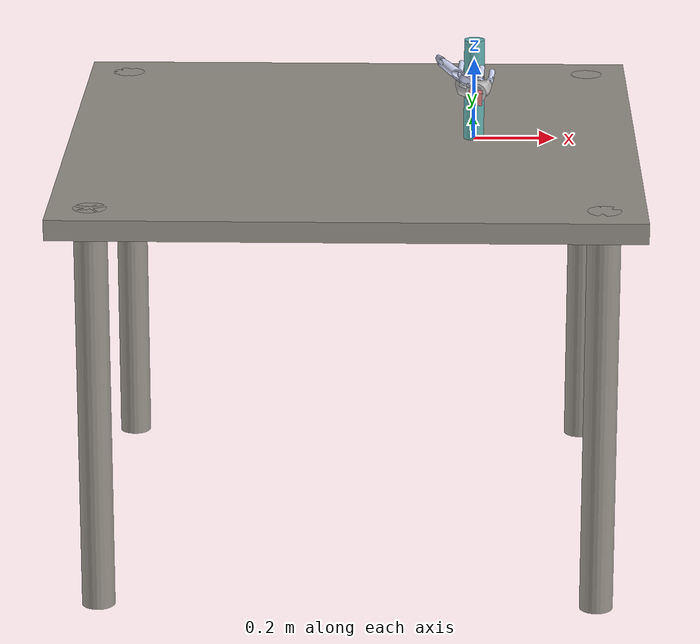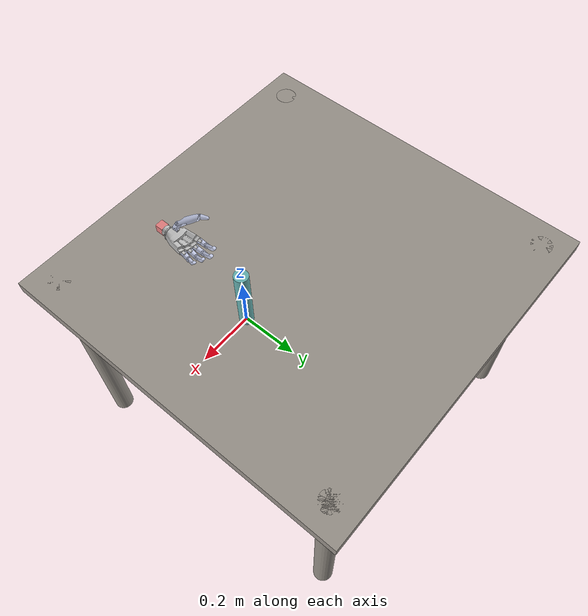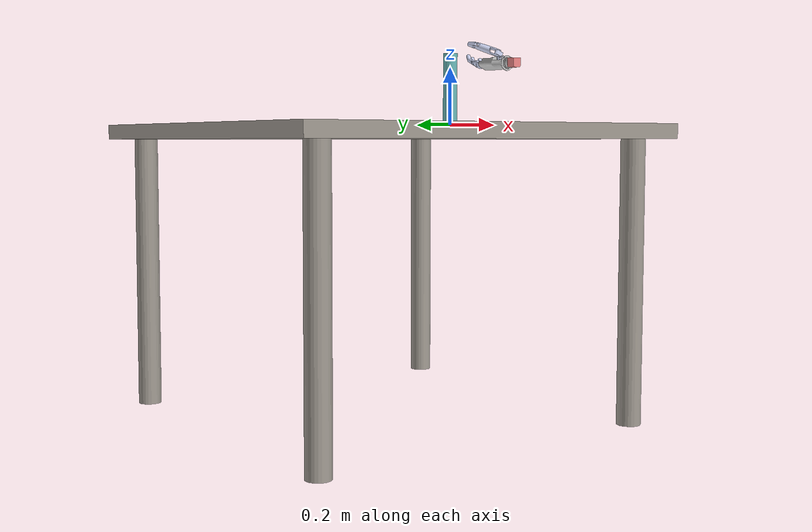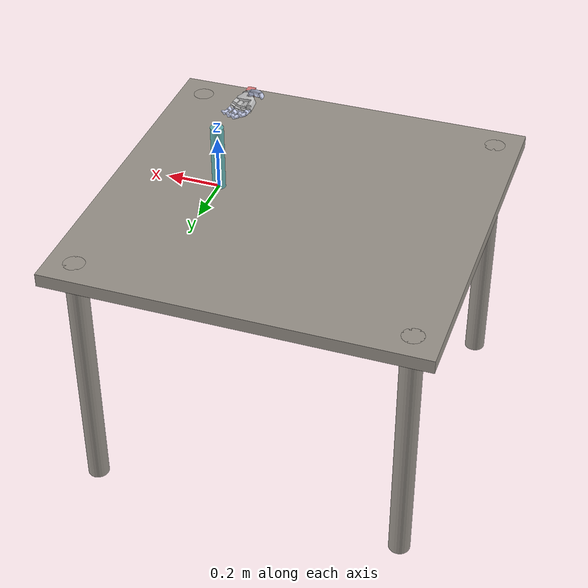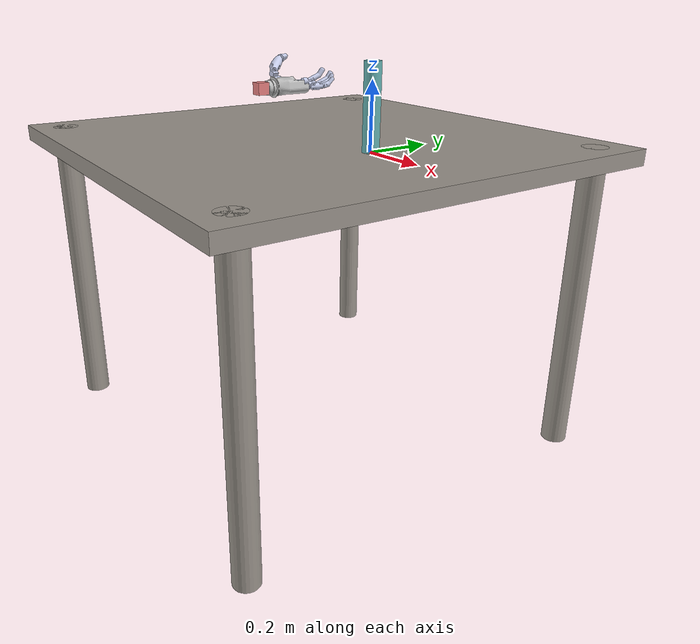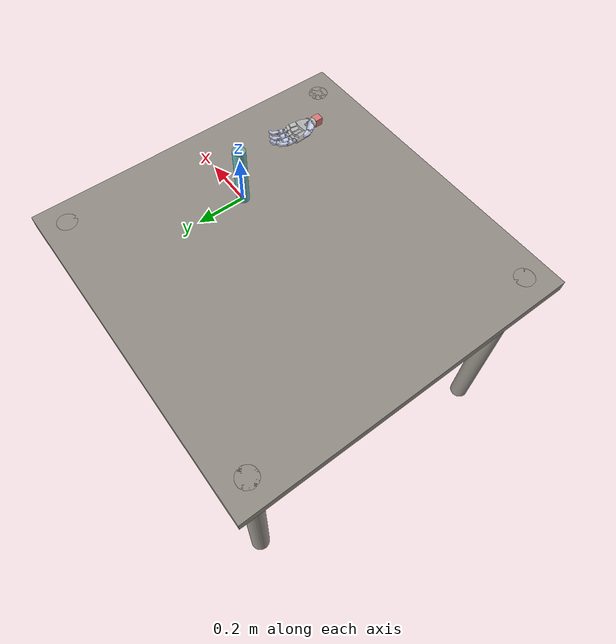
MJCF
<mujoco model="bb_left_hand">
    <include file="common/materials.xml"/>

    <compiler angle="radian" meshdir="mesh/bb_left_hand/" texturedir="texture/"/>
    <!-- "option" tag is taken from MPL.xml hand -->
    <option timestep="0.002" iterations="50" apirate="50" solver="Newton" tolerance="1e-10" cone="elliptic" gravity="0 0 -9.81" />

    <!-- MPL ALTERNATIVE -->
    <size njmax="500" nconmax="100" />

    <default>
        <default class="Generic">
            <geom contype="1" conaffinity="1" condim="4" margin="0.001" material="self" /> <!-- material="MatMesh" -->
        	<joint limited="true" damping="0.2" armature=".01"/>
        	<site type="ellipsoid" group="3"/> <!-- material="MatTouch" -->
            <position ctrllimited="true" kp="10"/>
            <velocity ctrllimited="true" ctrlrange="-1 1" forcelimited="true" forcerange="-1 1" kv="50"/>
		</default>
    </default>

    <statistic extent="1" center="0 -0.2 0.2"/>
    <visual>
        <quality shadowsize="2048"/>
    	<map fogstart="6" fogend="10"/>
    	<headlight diffuse=".6 .6 .6" specular="0 0 0"/>
    </visual>

    <asset>
        <mesh name="base_link" file="base_link.STL" />
        <mesh name="PPL" file="PPL.STL" />
        <mesh name="PDL" file="PDL.STL" />
        <mesh name="RPL" file="RPL.STL" />
        <mesh name="RDL" file="RDL.STL" />
        <mesh name="MPL" file="MPL.STL" />
        <mesh name="MDL" file="MDL.STL" />
        <mesh name="IPL" file="IPL.STL" />
        <mesh name="IDL" file="IDL.STL" />
        <mesh name="TCL" file="TCL.STL" />
        <mesh name="TPL" file="TPL.STL" />
        <mesh name="TDL" file="TDL.STL" />

        <!-- wood2d takes more GPU memory than marble2d -->
        <texture name="marble2d" type="2d" file="marble.png"/>
        <material name="table2d" texture="marble2d" reflectance="0.3" rgba=".8 .8 .8 1"/>

        <texture name="groundplane" type="2d" builtin="checker" rgb1=".2 .3 .4" rgb2=".1 .2 .3" width="100" height="100"/>
        <material name="groundplane" texture="groundplane" texrepeat="10 10"/>

        <material name="blue_color" rgba="0.0 1.0 0.0 1."/>

        <texture file="woodb.png" type="2d" />
        <material name="MatWoodB" texture="woodb" shininess="0" rgba="0.0 1.0 0.0 1.0" />

        <!-- shininess=".3" reflectance="0.3"  -->

    </asset>

    <worldbody>
        <light directional="false" cutoff="35" exponent="10" diffuse=".7 .7 .7" pos="0.4 -0.2 1.5" dir="-0.4 0.2 -1.5" specular=".3 .3 .3" castshadow="true" />
        <camera name="fixed" pos="-0.3 -.7 0.7" zaxis="0 -1 1.3" fovy="60" ipd="0.068"/>

        <!-- table -->
        <!-- Initial: 1x1     with +-0.4 bases -->
        <!-- Final  : 1.4x1.4 with +-0.6 bases -->
        <geom type="plane" pos="-0.3 0 0" size=".7 .7 .025" material="table2d"/> <!-- material= table2d | MatWoodB | green_table -->
        <geom contype="0" conaffinity="0" type="box" pos="-0.3 0 -0.026" size=".7 .7 .025" material="table2d" /> <!-- material="table2d blue_color tablecube" -->
        <geom contype="0" conaffinity="0" type="cylinder" fromto=" .3  .6 -1.001  .3  .6 -0.001" size="0.04" material="table2d" /> <!-- table2d -->
        <geom contype="0" conaffinity="0" type="cylinder" fromto="-.9  .6 -1.001 -.9  .6 -0.001" size="0.04" material="table2d" /> <!-- table2d -->
        <geom contype="0" conaffinity="0" type="cylinder" fromto=" .3 -.6 -1.001  .3 -.6 -0.001" size="0.04" material="table2d" /> <!-- table2d -->
        <geom contype="0" conaffinity="0" type="cylinder" fromto="-.9 -.6 -1.001 -.9 -.6 -0.001" size="0.04" material="table2d" /> <!-- table2d -->
        <!-- /table -->

        <!-- ground -->
        <geom contype="0" conaffinity="0" type="plane" pos="0 0 -1" size="10 10 0.25" material="groundplane"/> <!-- material="groundplane | blue_color | groundplane" -->
        <!-- /ground -->

        <!-- Natural colors -->

        <!-- object -->

        <body name="long_cylinder" pos="0. 0. 0.125" quat="1 0 0 0">
            <joint type="free" damping="0" armature="0" limited="false"/>

            <geom type="cylinder" pos="0 0 0" size="0.025 0.125" material="target" />

        </body>
        <!-- /object -->

        <body name="mocap" mocap="true" pos="0 -0.35 0.2" quat="1 0 0 0">
            <geom type="box" group="1" size="0.015 0.015 0.015" contype="0" conaffinity="0" rgba=".9 .5 .5 1"/>
        </body>

        <!-- ROBOT -->
        <!-- quat="2.36 0 3.1415 0" -->
        <!-- quat="3.1415 0 3.1415 0" -->
        <body childclass="Generic" name="base_link" pos="0 -0.335 0.2" quat="1 0 0 0" >
            <joint name="base_link_joint" type="free" damping="0" armature="0" limited="false"/>

            <site name="palm_center" pos="0 0.09 0.03"/>

            <inertial pos="-0.00393916 0.0601545 -0.000633525" mass="0.218885" diaginertia="1e-05 1e-05 1e-05" />
            <geom type="mesh" rgba="0.752941 0.752941 0.752941 1" mesh="base_link" />
            <body name="PPL" pos="0.0291239 0.109021 -0.00240167" quat="0.583861 0.517036 0.414965 0.468598">
                <inertial pos="0.0185447 0.00122979 -6.11859e-08" mass="0.00428965" diaginertia="1e-06 1e-06 1e-06" />
                <joint name="PPJ" type="hinge" pos="0 0 0" axis="0 0 1" range="0 1.57" />
                <geom type="mesh" rgba="0.792157 0.819608 0.933333 1" mesh="PPL" />
                <body name="PDL" pos="0.035659 0.00216546 0">
                    <inertial pos="0.0132061 0.00518222 -1.07692e-07" mass="0.0052304" diaginertia="1e-06 1e-06 1e-06" />
                    <joint name="PDJ" type="hinge" pos="0 0 0" axis="0 0 1" range="0 1.57"/>
                    <geom type="mesh" rgba="0.792157 0.819608 0.933333 1" mesh="PDL" />
                </body>
            </body>
            <body name="RPL" pos="0.00741287 0.116336 -0.00572859" quat="0.53625 0.526971 0.462142 0.470279">
                <inertial pos="0.0210198 0.00180111 1.57902e-07" mass="0.00578842" diaginertia="1e-06 1e-06 1e-06" />
                <joint name="RPJ" type="hinge" pos="0 0 0" axis="0 0 1" range="0 1.57"/>
                <geom type="mesh" rgba="0.792157 0.819608 0.933333 1" mesh="RPL" />
                <body name="RDL" pos="0.0396486 0.00256075 0">
                    <inertial pos="0.0157663 0.00906834 6.42579e-08" mass="0.00647903" diaginertia="1e-06 1e-06 1e-06" />
                    <joint name="RDJ" type="hinge" pos="0 0 0" axis="0 0 1" range="0 1.57"/>
                    <geom type="mesh" rgba="0.792157 0.819608 0.933333 1" mesh="RDL" />
                </body>
            </body>
            <body name="MPL" pos="-0.0141884 0.118928 -0.00672859" quat="0.503678 0.526149 0.494951 0.473813">
                <inertial pos="0.022788 0.00305908 9.12356e-08" mass="0.00688777" diaginertia="1e-06 1e-06 1e-06" />
                <joint name="MPJ" type="hinge" pos="0 0 0" axis="0 0 1" range="0 1.57"/>
                <geom type="mesh" rgba="0.792157 0.819608 0.933333 1" mesh="MPL" />
                <body name="MDL" pos="0.0434209 0.0049315 0">
                    <inertial pos="0.0201145 0.0106882 -3.66487e-07" mass="0.00808465" diaginertia="1e-06 1e-06 1e-06" />
                    <joint name="MDJ" type="hinge" pos="0 0 0" axis="0 0 1" range="0 1.57"/>
                    <geom type="mesh" rgba="0.792157 0.819608 0.933333 1" mesh="MDL" />
                </body>
            </body>
            <body name="IPL" pos="-0.0371047 0.116971 0.00222195" quat="0.454519 0.541675 0.541675 0.454519">
                <inertial pos="0.0185648 0.00201975 3.85313e-08" mass="0.00447489" diaginertia="1e-06 1e-06 1e-06" />
                <joint name="IPJ" type="hinge" pos="0 0 0" axis="0 0 1" range="0 1.57"/>
                <geom type="mesh" rgba="0.792157 0.819608 0.933333 1" mesh="IPL" />
                <body name="IDL" pos="0.0357158 0.00343272 0">
                    <inertial pos="0.0200632 0.0107841 -3.64005e-07" mass="0.00808464" diaginertia="1e-06 1e-06 1e-06" />
                    <joint name="IDJ" type="hinge" pos="0 0 0" axis="0 0 1" range="0 1.57"/>
                    <geom type="mesh" rgba="0.792157 0.819608 0.933333 1" mesh="IDL" />
                </body>
            </body>
            <body name="TCL" pos="-0.0150289 0.0361693 0.0176392" quat="0 0 0.707107 0.707107">
                <inertial pos="0.0057504 0.00856342 -0.00035167" mass="0.00765789" diaginertia="1e-06 1e-06 1e-06" />
                <joint name="TCJ" type="hinge" pos="0 0 0" axis="0 0 1" range="0 1.05"/>
                <geom type="mesh" rgba="0.792157 0.819608 0.933333 1" mesh="TCL" />
                <body name="TPL" pos="0.0114902 0.0147368 0.00150953" quat="0.688035 -0.688035 -0.163121 0.163121">
                    <inertial pos="0.0347204 -0.0254991 -3.88841e-05" mass="0.0238266" diaginertia="1e-06 1e-06 1e-06" />
                    <joint name="TPJ" type="hinge" pos="0 0 0" axis="0 0 1" range="-.57 0" />
                    <geom type="mesh" rgba="0.792157 0.819608 0.933333 1" mesh="TPL" />
                    <body name="TDL" pos="0.0642101 -0.047131 0.000500011">
                        <inertial pos="0.00184464 -0.0158263 2.37766e-07" mass="0.00526886" diaginertia="1e-06 1e-06 1e-06" />
                        <joint name="TDJ" type="hinge" pos="0 0 0" axis="0 0 1" range="-1.14 0"/>
                        <geom type="mesh" rgba="0.792157 0.819608 0.933333 1" mesh="TDL" />
                    </body>
                </body>
            </body>
        </body>
    </worldbody>

    <sensor>
        <jointpos name="SJP_thumb_C"	        joint="TCJ"/>
        <jointpos name="SJP_thumb_proximal"	    joint="TPJ"/>
        <jointpos name="SJP_thumb_distal"	    joint="TDJ"/>
        <jointpos name="SJP_index_proximal"	    joint="IPJ"/>
        <jointpos name="SJP_index_distal"	    joint="IDJ"/>
        <jointpos name="SJP_middle_proximal"	joint="MPJ"/>
        <jointpos name="SJP_middle_distal"	    joint="MDJ"/>
        <jointpos name="SJP_ring_proximal"	    joint="RPJ"/>
        <jointpos name="SJP_ring_distal"	    joint="RDJ"/>
        <jointpos name="SJP_pinky_proximal"	    joint="PPJ"/>
        <jointpos name="SJP_pinky_distal"	    joint="PDJ"/>

        <jointvel name="SJV_thumb_C"	        joint="TCJ"/>
        <jointvel name="SJV_thumb_proximal"	    joint="TPJ"/>
        <jointvel name="SJV_thumb_distal"	    joint="TDJ"/>
        <jointvel name="SJV_index_proximal"	    joint="IPJ"/>
        <jointvel name="SJV_index_distal"	    joint="IDJ"/>
        <jointvel name="SJV_middle_proximal"	joint="MPJ"/>
        <jointvel name="SJV_middle_distal"	    joint="MDJ"/>
        <jointvel name="SJV_ring_proximal"	    joint="RPJ"/>
        <jointvel name="SJV_ring_distal"	    joint="RDJ"/>
        <jointvel name="SJV_pinky_proximal"	    joint="PPJ"/>
        <jointvel name="SJV_pinky_distal"	    joint="PDJ"/>

		<actuatorpos name="SAP_thumb_C" 	     actuator="A_thumb_C" />
        <actuatorpos name="SAP_thumb_proximal" 	 actuator="A_thumb_proximal" />
        <actuatorpos name="SAP_index_proximal" 	 actuator="A_index_proximal" />
        <actuatorpos name="SAP_middle_proximal"  actuator="A_middle_proximal" />
        <actuatorpos name="SAP_ring_proximal" 	 actuator="A_ring_proximal" />
        <actuatorpos name="SAP_pinky_proximal" 	 actuator="A_pinky_proximal" />

        <actuatorvel name="SAV_thumb_C" 	     actuator="A_thumb_C" />
        <actuatorvel name="SAV_thumb_proximal" 	 actuator="A_thumb_proximal" />
        <actuatorvel name="SAV_index_proximal" 	 actuator="A_index_proximal" />
        <actuatorvel name="SAV_middle_proximal"  actuator="A_middle_proximal" />
        <actuatorvel name="SAV_ring_proximal" 	 actuator="A_ring_proximal" />
        <actuatorvel name="SAV_pinky_proximal" 	 actuator="A_pinky_proximal" />

        <actuatorfrc name="SAF_thumb_C" 	     actuator="A_thumb_C" />
        <actuatorfrc name="SAF_thumb_proximal" 	 actuator="A_thumb_proximal" />
        <actuatorfrc name="SAF_index_proximal" 	 actuator="A_index_proximal" />
        <actuatorfrc name="SAF_middle_proximal"  actuator="A_middle_proximal" />
        <actuatorfrc name="SAF_ring_proximal" 	 actuator="A_ring_proximal" />
        <actuatorfrc name="SAF_pinky_proximal" 	 actuator="A_pinky_proximal" />

	</sensor>

    <contact>
        <exclude name="EX_base_thumb_p" body1="base_link" body2="TPL" />
    </contact>

    <tendon>
	</tendon>

	<equality>
        <weld body1="mocap" body2="base_link" solref="0.01 1" solimp=".9 .9 0.01"/>

		<!-- Proximal-Distal Couplings -->

		<!-- AD-AB Coupling -->
		<joint name="thumb_cpl"  joint1="TPJ" joint2="TDJ" polycoef="0 0.9  0 0 0"/>
        <joint name="index_cpl"  joint1="IPJ" joint2="IDJ" polycoef="0 1    0 0 0"/>
        <joint name="middle_cpl" joint1="MPJ" joint2="MDJ" polycoef="0 1    0 0 0"/>
        <joint name="ring_cpl"   joint1="RPJ" joint2="RDJ" polycoef="0 1    0 0 0"/>
        <joint name="pinky_cpl"  joint1="PPJ" joint2="PDJ" polycoef="0 1    0 0 0"/>
	</equality>

    <!-- Thumb actuator now with gear -->

    <!-- Are the joints initialized randomly? -->
    <!-- Reference: http://www.mujoco.org/book/XMLreference.html#velocity -->
    <!-- ctrlrange in position actuators is of dimension of position. -->
    <!-- ctrlrange in velocity actuators is of dimension of velocity. -->
    <actuator>
        <position name="A_thumb_C"         class="Generic" joint="TCJ"  ctrlrange=" 0 1.05"/>
        <velocity name="A_thumb_proximal"  class="Generic" joint="TPJ" forcerange="-2 2" gear="-1 0 0 0 0 0"/>
        <velocity name="A_index_proximal"  class="Generic" joint="IPJ"/>
        <velocity name="A_middle_proximal" class="Generic" joint="MPJ"/>
        <velocity name="A_ring_proximal"   class="Generic" joint="RPJ"/>
        <velocity name="A_pinky_proximal"  class="Generic" joint="PPJ"/>
	</actuator>

</mujoco>

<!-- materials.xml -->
<!--
Common textures, colors and materials to be used throughout this suite. Some
materials such as xxx_highlight are activated on occurence of certain events,
for example receiving a positive reward.
-->
<mujoco>
  <asset>
    <material name="self" rgba=".7 .5 .3 1"/>
    <material name="self_default" rgba=".7 .5 .3 1"/>
    <material name="self_highlight" rgba="0 .5 .3 .5"/>
    <material name="effector" rgba=".7 .4 .2 1"/>
    <material name="effector_default" rgba=".7 .4 .2 1"/>
    <material name="effector_highlight" rgba="0 .5 .3 1"/>
    <material name="decoration" rgba=".3 .5 .7 1"/>
    <material name="eye" rgba="0 .2 1 1"/>
    <!-- target is what is being used in rgb mode (not human) -->
    <material name="target" rgba="0.4 0.7 0.7 1"/>
    <!-- target_default is only shown in human rendering -->
    <material name="target_default" rgba="0.4 0.7 0.7 1"/>
    <!-- The following color will be in effect once we get a "reward = 1". -->
    <material name="target_highlight" rgba="0.1 1 .3 0.8"/>
  </asset>
</mujoco>
